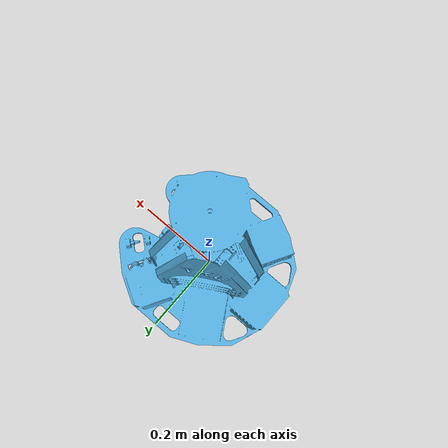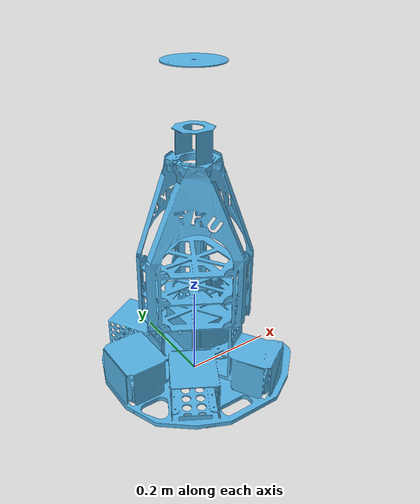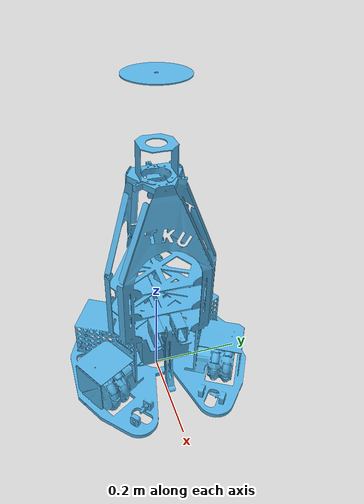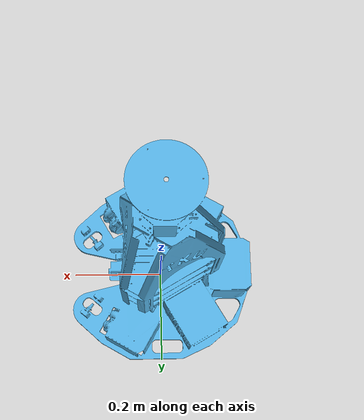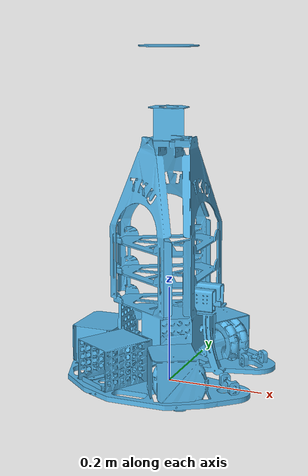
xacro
<?xml version="1.0"?>
<!-- Avoidance-challenge robot for Gazebo: robot6th at its true size, footprint collision,
     planar_move drive and (lidar config only) three Hokuyo lidars 60 cm high, 120 deg apart. -->
<robot name="avoid_robot" xmlns:xacro="http://www.ros.org/wiki/xacro">
  <xacro:arg name="sensor" default="camera"/>          <!-- camera | lidar -->
  <xacro:arg name="lidar_fov_deg" default="240"/>      <!-- Hokuyo model unknown: parameters -->
  <xacro:arg name="lidar_samples" default="667"/>      <!-- 0.36 deg resolution over 240 deg -->
  <xacro:arg name="lidar_range" default="8.0"/>        <!-- sees the far end of the field -->
  <xacro:arg name="lidar_rate" default="10"/>
  <xacro:arg name="lidar_mount_r" default="0.15"/>     <!-- assumed inside the footprint -->
  <xacro:property name="lidar_z" value="0.60"/>

  <link name="base_footprint"/>
  <joint name="base_joint" type="fixed">
    <parent link="base_footprint"/>
    <child link="base_link"/>
  </joint>

  <!-- Meshes: robot frame, metres, z = 0 at the floor (robot6th_description/scripts/make_robot6th_meshes.py). -->
  <link name="base_link">
    <inertial>
      <origin xyz="0 0 0.30"/>
      <mass value="31"/>
      <inertia ixx="1.64" ixy="0" ixz="0" iyy="1.64" iyz="0" izz="0.83"/>
    </inertial>
    <visual>
      <geometry><mesh filename="package://robot6th_description/meshes/robot6th.stl"/></geometry>
    </visual>
    <collision>
      <geometry><mesh filename="package://robot6th_description/meshes/robot6th_collision.stl" scale="1 1 0.7262"/></geometry>
    </collision>
  </link>
  <gazebo reference="base_link">
    <mu1>0.0</mu1>
    <mu2>0.0</mu2>
  </gazebo>

  <!-- planar_move publishes perfect odometry; avoid_sim/odom_noise turns it into realistic /odom.
       Its own TF (sim_odom -> sim_base) is kept apart from the robot's TF tree on purpose. -->
  <gazebo>
    <plugin name="planar_move" filename="libgazebo_ros_planar_move.so">
      <commandTopic>cmd_vel</commandTopic>
      <odometryTopic>sim/odom_true</odometryTopic>
      <odometryFrame>sim_odom</odometryFrame>
      <robotBaseFrame>sim_base</robotBaseFrame>
      <odometryRate>50.0</odometryRate>
      <cmdTimeout>0.5</cmdTimeout>
    </plugin>
  </gazebo>

  <xacro:macro name="hokuyo" params="idx yaw_deg">
    <joint name="laser_${idx}_joint" type="fixed">
      <parent link="base_link"/>
      <child link="laser_${idx}"/>
      <origin xyz="${$(arg lidar_mount_r) * cos(radians(yaw_deg))} ${$(arg lidar_mount_r) * sin(radians(yaw_deg))} ${lidar_z}"
              rpy="0 0 ${radians(yaw_deg)}"/>
    </joint>
    <link name="laser_${idx}"/>
    <gazebo reference="laser_${idx}">
      <sensor type="ray" name="laser_${idx}">
        <visualize>false</visualize>
        <update_rate>$(arg lidar_rate)</update_rate>
        <ray>
          <scan>
            <horizontal>
              <samples>$(arg lidar_samples)</samples>
              <resolution>1</resolution>
              <min_angle>${-radians($(arg lidar_fov_deg)) / 2}</min_angle>
              <max_angle>${radians($(arg lidar_fov_deg)) / 2}</max_angle>
            </horizontal>
          </scan>
          <range>
            <min>0.06</min>
            <max>$(arg lidar_range)</max>
            <resolution>0.01</resolution>
          </range>
          <noise>
            <type>gaussian</type>
            <mean>0.0</mean>
            <stddev>0.01</stddev>
          </noise>
        </ray>
        <plugin name="laser_${idx}_driver" filename="libgazebo_ros_laser.so">
          <topicName>scan_${idx}</topicName>
          <frameName>laser_${idx}</frameName>
        </plugin>
      </sensor>
    </gazebo>
  </xacro:macro>

  <xacro:macro name="self_occluder" params="idx r yaw_deg">
    <joint name="self_occluder_${idx}_joint" type="fixed">
      <parent link="base_link"/>
      <child link="self_occluder_${idx}"/>
      <origin xyz="${r * cos(radians(yaw_deg))} ${r * sin(radians(yaw_deg))} ${lidar_z}"/>
    </joint>
    <link name="self_occluder_${idx}">
      <inertial><mass value="0.01"/><inertia ixx="1e-6" ixy="0" ixz="0" iyy="1e-6" iyz="0" izz="1e-6"/></inertial>
      <visual><geometry><cylinder radius="0.012" length="0.12"/></geometry></visual>
      <collision><geometry><cylinder radius="0.012" length="0.12"/></geometry></collision>
    </link>
  </xacro:macro>

  <xacro:if value="${'$(arg sensor)' == 'lidar'}">
    <xacro:hokuyo idx="0" yaw_deg="180"/>   <!-- straight back -->
    <xacro:hokuyo idx="1" yaw_deg="60"/>    <!-- front left -->
    <xacro:hokuyo idx="2" yaw_deg="-60"/>   <!-- front right -->
    <xacro:self_occluder idx="0" r="0.17" yaw_deg="120"/>
    <xacro:self_occluder idx="1" r="0.17" yaw_deg="-120"/>
    <xacro:self_occluder idx="2" r="0.10" yaw_deg="0"/>
  </xacro:if>
</robot>
